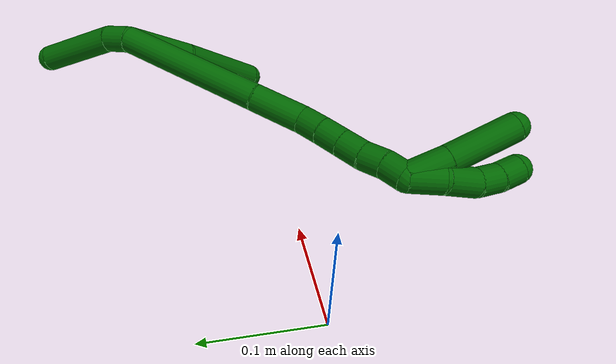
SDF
<sdf version="1.7">
 <world name="default">
  <model name="6">
   <static>0</static>
   <link name="6">
    <collision name="collision-cylinder-e_1_2_8">
     <pose>0.014513 -0.019784 -0.019324 2.34443 0.483277 1.05898</pose>
     <geometry><cylinder><radius>0.0125</radius><length>0.062465</length></cylinder></geometry>
     <surface>
      <friction><ode><mu>1.16</mu><mu2>1.16</mu2><slip1>0</slip1><slip2>0</slip2></ode></friction>
      <contact><ode><kp>1e+06</kp><kd>1</kd><max_vel>0</max_vel><min_depth>0.001</min_depth></ode></contact>
     </surface>
    </collision>
    <visual name="visual-cylinder-e_1_2_8">
     <pose>0.014513 -0.019784 -0.019324 2.34443 0.483277 1.05898</pose>
     <geometry><cylinder><radius>0.0125</radius><length>0.062465</length></cylinder></geometry>
     <material><ambient>0 0.392157 0.003922 1</ambient></material>
    </visual>
    <collision name="collision-cylinder-e_2_8_6">
     <pose>0.056335 -0.066818 -0.059318 2.21973 0.673793 1.22852</pose>
     <geometry><cylinder><radius>0.0125</radius><length>0.087535</length></cylinder></geometry>
     <surface>
      <friction><ode><mu>1.16</mu><mu2>1.16</mu2><slip1>0</slip1><slip2>0</slip2></ode></friction>
      <contact><ode><kp>1e+06</kp><kd>1</kd><max_vel>0</max_vel><min_depth>0.001</min_depth></ode></contact>
     </surface>
    </collision>
    <visual name="visual-cylinder-e_2_8_6">
     <pose>0.056335 -0.066818 -0.059318 2.21973 0.673793 1.22852</pose>
     <geometry><cylinder><radius>0.0125</radius><length>0.087535</length></cylinder></geometry>
     <material><ambient>0 0.392157 0.003922 1</ambient></material>
    </visual>
    <collision name="collision-cylinder-e_1_2_9">
     <pose>0.005476 0.004295 0.010332 -0.39395 0.455102 -0.092356</pose>
     <geometry><cylinder><radius>0.0125</radius><length>0.024915</length></cylinder></geometry>
     <surface>
      <friction><ode><mu>1.16</mu><mu2>1.16</mu2><slip1>0</slip1><slip2>0</slip2></ode></friction>
      <contact><ode><kp>1e+06</kp><kd>1</kd><max_vel>0</max_vel><min_depth>0.001</min_depth></ode></contact>
     </surface>
    </collision>
    <visual name="visual-cylinder-e_1_2_9">
     <pose>0.005476 0.004295 0.010332 -0.39395 0.455102 -0.092356</pose>
     <geometry><cylinder><radius>0.0125</radius><length>0.024915</length></cylinder></geometry>
     <material><ambient>0 0.392157 0.003922 1</ambient></material>
    </visual>
    <collision name="collision-cylinder-e_2_9_5">
     <pose>0.031217 0.029593 0.04428 -0.726923 0.570189 -0.222034</pose>
     <geometry><cylinder><radius>0.0125</radius><length>0.075085</length></cylinder></geometry>
     <surface>
      <friction><ode><mu>1.16</mu><mu2>1.16</mu2><slip1>0</slip1><slip2>0</slip2></ode></friction>
      <contact><ode><kp>1e+06</kp><kd>1</kd><max_vel>0</max_vel><min_depth>0.001</min_depth></ode></contact>
     </surface>
    </collision>
    <visual name="visual-cylinder-e_2_9_5">
     <pose>0.031217 0.029593 0.04428 -0.726923 0.570189 -0.222034</pose>
     <geometry><cylinder><radius>0.0125</radius><length>0.075085</length></cylinder></geometry>
     <material><ambient>0 0.392157 0.003922 1</ambient></material>
    </visual>
    <collision name="collision-cylinder-e_1_2_10">
     <pose>-0.016219 -0.010701 -0.069655 2.98916 -0.226205 -1.95779</pose>
     <geometry><cylinder><radius>0.0125</radius><length>0.144629</length></cylinder></geometry>
     <surface>
      <friction><ode><mu>1.16</mu><mu2>1.16</mu2><slip1>0</slip1><slip2>0</slip2></ode></friction>
      <contact><ode><kp>1e+06</kp><kd>1</kd><max_vel>0</max_vel><min_depth>0.001</min_depth></ode></contact>
     </surface>
    </collision>
    <visual name="visual-cylinder-e_1_2_10">
     <pose>-0.016219 -0.010701 -0.069655 2.98916 -0.226205 -1.95779</pose>
     <geometry><cylinder><radius>0.0125</radius><length>0.144629</length></cylinder></geometry>
     <material><ambient>0 0.392157 0.003922 1</ambient></material>
    </visual>
    <collision name="collision-cylinder-e_2_10_11">
     <pose>-0.035897 -0.026121 -0.162706 2.94253 -0.143955 -1.25073</pose>
     <geometry><cylinder><radius>0.0125</radius><length>0.048231</length></cylinder></geometry>
     <surface>
      <friction><ode><mu>1.16</mu><mu2>1.16</mu2><slip1>0</slip1><slip2>0</slip2></ode></friction>
      <contact><ode><kp>1e+06</kp><kd>1</kd><max_vel>0</max_vel><min_depth>0.001</min_depth></ode></contact>
     </surface>
    </collision>
    <visual name="visual-cylinder-e_2_10_11">
     <pose>-0.035897 -0.026121 -0.162706 2.94253 -0.143955 -1.25073</pose>
     <geometry><cylinder><radius>0.0125</radius><length>0.048231</length></cylinder></geometry>
     <material><ambient>0 0.392157 0.003922 1</ambient></material>
    </visual>
    <collision name="collision-cylinder-e_3_11_12">
     <pose>-0.043696 -0.030402 -0.196602 -3.0998 -0.391501 2.93158</pose>
     <geometry><cylinder><radius>0.0125</radius><length>0.022743</length></cylinder></geometry>
     <surface>
      <friction><ode><mu>1.16</mu><mu2>1.16</mu2><slip1>0</slip1><slip2>0</slip2></ode></friction>
      <contact><ode><kp>1e+06</kp><kd>1</kd><max_vel>0</max_vel><min_depth>0.001</min_depth></ode></contact>
     </surface>
    </collision>
    <visual name="visual-cylinder-e_3_11_12">
     <pose>-0.043696 -0.030402 -0.196602 -3.0998 -0.391501 2.93158</pose>
     <geometry><cylinder><radius>0.0125</radius><length>0.022743</length></cylinder></geometry>
     <material><ambient>0 0.392157 0.003922 1</ambient></material>
    </visual>
    <collision name="collision-cylinder-e_4_12_13">
     <pose>-0.051538 -0.029649 -0.217418 -3.11117 -0.327284 2.95785</pose>
     <geometry><cylinder><radius>0.0125</radius><length>0.021794</length></cylinder></geometry>
     <surface>
      <friction><ode><mu>1.16</mu><mu2>1.16</mu2><slip1>0</slip1><slip2>0</slip2></ode></friction>
      <contact><ode><kp>1e+06</kp><kd>1</kd><max_vel>0</max_vel><min_depth>0.001</min_depth></ode></contact>
     </surface>
    </collision>
    <visual name="visual-cylinder-e_4_12_13">
     <pose>-0.051538 -0.029649 -0.217418 -3.11117 -0.327284 2.95785</pose>
     <geometry><cylinder><radius>0.0125</radius><length>0.021794</length></cylinder></geometry>
     <material><ambient>0 0.392157 0.003922 1</ambient></material>
    </visual>
    <collision name="collision-cylinder-e_5_13_14">
     <pose>-0.058544 -0.029034 -0.238055 -3.11249 -0.327002 2.96565</pose>
     <geometry><cylinder><radius>0.0125</radius><length>0.021809</length></cylinder></geometry>
     <surface>
      <friction><ode><mu>1.16</mu><mu2>1.16</mu2><slip1>0</slip1><slip2>0</slip2></ode></friction>
      <contact><ode><kp>1e+06</kp><kd>1</kd><max_vel>0</max_vel><min_depth>0.001</min_depth></ode></contact>
     </surface>
    </collision>
    <visual name="visual-cylinder-e_5_13_14">
     <pose>-0.058544 -0.029034 -0.238055 -3.11249 -0.327002 2.96565</pose>
     <geometry><cylinder><radius>0.0125</radius><length>0.021809</length></cylinder></geometry>
     <material><ambient>0 0.392157 0.003922 1</ambient></material>
    </visual>
    <collision name="collision-cylinder-e_6_14_15">
     <pose>-0.066259 -0.029661 -0.257701 3.04252 -0.422502 -2.68722</pose>
     <geometry><cylinder><radius>0.0125</radius><length>0.020548</length></cylinder></geometry>
     <surface>
      <friction><ode><mu>1.16</mu><mu2>1.16</mu2><slip1>0</slip1><slip2>0</slip2></ode></friction>
      <contact><ode><kp>1e+06</kp><kd>1</kd><max_vel>0</max_vel><min_depth>0.001</min_depth></ode></contact>
     </surface>
    </collision>
    <visual name="visual-cylinder-e_6_14_15">
     <pose>-0.066259 -0.029661 -0.257701 3.04252 -0.422502 -2.68722</pose>
     <geometry><cylinder><radius>0.0125</radius><length>0.020548</length></cylinder></geometry>
     <material><ambient>0 0.392157 0.003922 1</ambient></material>
    </visual>
    <collision name="collision-cylinder-e_7_15_1">
     <pose>-0.074059 -0.029899 -0.276467 -3.0688 -0.362232 2.74904</pose>
     <geometry><cylinder><radius>0.0125</radius><length>0.020245</length></cylinder></geometry>
     <surface>
      <friction><ode><mu>1.16</mu><mu2>1.16</mu2><slip1>0</slip1><slip2>0</slip2></ode></friction>
      <contact><ode><kp>1e+06</kp><kd>1</kd><max_vel>0</max_vel><min_depth>0.001</min_depth></ode></contact>
     </surface>
    </collision>
    <visual name="visual-cylinder-e_7_15_1">
     <pose>-0.074059 -0.029899 -0.276467 -3.0688 -0.362232 2.74904</pose>
     <geometry><cylinder><radius>0.0125</radius><length>0.020245</length></cylinder></geometry>
     <material><ambient>0 0.392157 0.003922 1</ambient></material>
    </visual>
    <collision name="collision-cylinder-e_1_1_16">
     <pose>-0.07988 -0.045757 -0.293571 2.00454 -0.121901 -0.19046</pose>
     <geometry><cylinder><radius>0.0125</radius><length>0.036742</length></cylinder></geometry>
     <surface>
      <friction><ode><mu>1.16</mu><mu2>1.16</mu2><slip1>0</slip1><slip2>0</slip2></ode></friction>
      <contact><ode><kp>1e+06</kp><kd>1</kd><max_vel>0</max_vel><min_depth>0.001</min_depth></ode></contact>
     </surface>
    </collision>
    <visual name="visual-cylinder-e_1_1_16">
     <pose>-0.07988 -0.045757 -0.293571 2.00454 -0.121901 -0.19046</pose>
     <geometry><cylinder><radius>0.0125</radius><length>0.036742</length></cylinder></geometry>
     <material><ambient>0 0.392157 0.003922 1</ambient></material>
    </visual>
    <collision name="collision-cylinder-e_2_16_4">
     <pose>-0.085965 -0.09142 -0.312972 1.95401 -0.12207 -0.18056</pose>
     <geometry><cylinder><radius>0.0125</radius><length>0.063258</length></cylinder></geometry>
     <surface>
      <friction><ode><mu>1.16</mu><mu2>1.16</mu2><slip1>0</slip1><slip2>0</slip2></ode></friction>
      <contact><ode><kp>1e+06</kp><kd>1</kd><max_vel>0</max_vel><min_depth>0.001</min_depth></ode></contact>
     </surface>
    </collision>
    <visual name="visual-cylinder-e_2_16_4">
     <pose>-0.085965 -0.09142 -0.312972 1.95401 -0.12207 -0.18056</pose>
     <geometry><cylinder><radius>0.0125</radius><length>0.063258</length></cylinder></geometry>
     <material><ambient>0 0.392157 0.003922 1</ambient></material>
    </visual>
    <collision name="collision-cylinder-e_1_1_17">
     <pose>-0.078436 -0.038624 -0.29747 2.45837 -0.052954 -0.148694</pose>
     <geometry><cylinder><radius>0.0125</radius><length>0.029862</length></cylinder></geometry>
     <surface>
      <friction><ode><mu>1.16</mu><mu2>1.16</mu2><slip1>0</slip1><slip2>0</slip2></ode></friction>
      <contact><ode><kp>1e+06</kp><kd>1</kd><max_vel>0</max_vel><min_depth>0.001</min_depth></ode></contact>
     </surface>
    </collision>
    <visual name="visual-cylinder-e_1_1_17">
     <pose>-0.078436 -0.038624 -0.29747 2.45837 -0.052954 -0.148694</pose>
     <geometry><cylinder><radius>0.0125</radius><length>0.029862</length></cylinder></geometry>
     <material><ambient>0 0.392157 0.003922 1</ambient></material>
    </visual>
    <collision name="collision-cylinder-e_2_17_18">
     <pose>-0.075622 -0.058085 -0.319307 2.36724 0.245747 0.58817</pose>
     <geometry><cylinder><radius>0.0125</radius><length>0.029632</length></cylinder></geometry>
     <surface>
      <friction><ode><mu>1.16</mu><mu2>1.16</mu2><slip1>0</slip1><slip2>0</slip2></ode></friction>
      <contact><ode><kp>1e+06</kp><kd>1</kd><max_vel>0</max_vel><min_depth>0.001</min_depth></ode></contact>
     </surface>
    </collision>
    <visual name="visual-cylinder-e_2_17_18">
     <pose>-0.075622 -0.058085 -0.319307 2.36724 0.245747 0.58817</pose>
     <geometry><cylinder><radius>0.0125</radius><length>0.029632</length></cylinder></geometry>
     <material><ambient>0 0.392157 0.003922 1</ambient></material>
    </visual>
    <collision name="collision-cylinder-e_3_18_19">
     <pose>-0.071287 -0.076789 -0.334978 2.12839 0.071496 0.128721</pose>
     <geometry><cylinder><radius>0.0125</radius><length>0.020452</length></cylinder></geometry>
     <surface>
      <friction><ode><mu>1.16</mu><mu2>1.16</mu2><slip1>0</slip1><slip2>0</slip2></ode></friction>
      <contact><ode><kp>1e+06</kp><kd>1</kd><max_vel>0</max_vel><min_depth>0.001</min_depth></ode></contact>
     </surface>
    </collision>
    <visual name="visual-cylinder-e_3_18_19">
     <pose>-0.071287 -0.076789 -0.334978 2.12839 0.071496 0.128721</pose>
     <geometry><cylinder><radius>0.0125</radius><length>0.020452</length></cylinder></geometry>
     <material><ambient>0 0.392157 0.003922 1</ambient></material>
    </visual>
    <collision name="collision-cylinder-e_4_19_3">
     <pose>-0.069998 -0.094707 -0.344173 1.95989 0.055751 0.083087</pose>
     <geometry><cylinder><radius>0.0125</radius><length>0.020054</length></cylinder></geometry>
     <surface>
      <friction><ode><mu>1.16</mu><mu2>1.16</mu2><slip1>0</slip1><slip2>0</slip2></ode></friction>
      <contact><ode><kp>1e+06</kp><kd>1</kd><max_vel>0</max_vel><min_depth>0.001</min_depth></ode></contact>
     </surface>
    </collision>
    <visual name="visual-cylinder-e_4_19_3">
     <pose>-0.069998 -0.094707 -0.344173 1.95989 0.055751 0.083087</pose>
     <geometry><cylinder><radius>0.0125</radius><length>0.020054</length></cylinder></geometry>
     <material><ambient>0 0.392157 0.003922 1</ambient></material>
    </visual>
    <collision name="collision-sphere-3">
     <pose>-0.069439 -0.10397 -0.347971 0 -0 0</pose>
     <geometry><sphere><radius>0.0125</radius></sphere></geometry>
     <surface>
      <friction><ode><mu>1.16</mu><mu2>1.16</mu2><slip1>0</slip1><slip2>0</slip2></ode></friction>
      <contact><ode><kp>1e+06</kp><kd>1</kd><max_vel>0</max_vel><min_depth>0.001</min_depth></ode></contact>
     </surface>
    </collision>
    <visual name="visual-sphere-3">
     <pose>-0.069439 -0.10397 -0.347971 0 -0 0</pose>
     <geometry><sphere><radius>0.0125</radius></sphere></geometry>
     <material><ambient>0 0.392157 0.003922 1</ambient></material>
    </visual>
    <collision name="collision-sphere-19">
     <pose>-0.070557 -0.085444 -0.340375 0 -0 0</pose>
     <geometry><sphere><radius>0.0125</radius></sphere></geometry>
     <surface>
      <friction><ode><mu>1.16</mu><mu2>1.16</mu2><slip1>0</slip1><slip2>0</slip2></ode></friction>
      <contact><ode><kp>1e+06</kp><kd>1</kd><max_vel>0</max_vel><min_depth>0.001</min_depth></ode></contact>
     </surface>
    </collision>
    <visual name="visual-sphere-19">
     <pose>-0.070557 -0.085444 -0.340375 0 -0 0</pose>
     <geometry><sphere><radius>0.0125</radius></sphere></geometry>
     <material><ambient>0 0.392157 0.003922 1</ambient></material>
    </visual>
    <collision name="collision-sphere-10">
     <pose>-0.032438 -0.021402 -0.139311 0 -0 0</pose>
     <geometry><sphere><radius>0.0125</radius></sphere></geometry>
     <surface>
      <friction><ode><mu>1.16</mu><mu2>1.16</mu2><slip1>0</slip1><slip2>0</slip2></ode></friction>
      <contact><ode><kp>1e+06</kp><kd>1</kd><max_vel>0</max_vel><min_depth>0.001</min_depth></ode></contact>
     </surface>
    </collision>
    <visual name="visual-sphere-10">
     <pose>-0.032438 -0.021402 -0.139311 0 -0 0</pose>
     <geometry><sphere><radius>0.0125</radius></sphere></geometry>
     <material><ambient>0 0.392157 0.003922 1</ambient></material>
    </visual>
    <collision name="collision-sphere-5">
     <pose>0.051482 0.050595 0.067894 0 -0 0</pose>
     <geometry><sphere><radius>0.0125</radius></sphere></geometry>
     <surface>
      <friction><ode><mu>1.16</mu><mu2>1.16</mu2><slip1>0</slip1><slip2>0</slip2></ode></friction>
      <contact><ode><kp>1e+06</kp><kd>1</kd><max_vel>0</max_vel><min_depth>0.001</min_depth></ode></contact>
     </surface>
    </collision>
    <visual name="visual-sphere-5">
     <pose>0.051482 0.050595 0.067894 0 -0 0</pose>
     <geometry><sphere><radius>0.0125</radius></sphere></geometry>
     <material><ambient>0 0.392157 0.003922 1</ambient></material>
    </visual>
    <collision name="collision-sphere-6">
     <pose>0.083644 -0.094069 -0.079988 0 -0 0</pose>
     <geometry><sphere><radius>0.0125</radius></sphere></geometry>
     <surface>
      <friction><ode><mu>1.16</mu><mu2>1.16</mu2><slip1>0</slip1><slip2>0</slip2></ode></friction>
      <contact><ode><kp>1e+06</kp><kd>1</kd><max_vel>0</max_vel><min_depth>0.001</min_depth></ode></contact>
     </surface>
    </collision>
    <visual name="visual-sphere-6">
     <pose>0.083644 -0.094069 -0.079988 0 -0 0</pose>
     <geometry><sphere><radius>0.0125</radius></sphere></geometry>
     <material><ambient>0 0.392157 0.003922 1</ambient></material>
    </visual>
    <collision name="collision-sphere-9">
     <pose>0.010952 0.00859 0.020665 0 -0 0</pose>
     <geometry><sphere><radius>0.0125</radius></sphere></geometry>
     <surface>
      <friction><ode><mu>1.16</mu><mu2>1.16</mu2><slip1>0</slip1><slip2>0</slip2></ode></friction>
      <contact><ode><kp>1e+06</kp><kd>1</kd><max_vel>0</max_vel><min_depth>0.001</min_depth></ode></contact>
     </surface>
    </collision>
    <visual name="visual-sphere-9">
     <pose>0.010952 0.00859 0.020665 0 -0 0</pose>
     <geometry><sphere><radius>0.0125</radius></sphere></geometry>
     <material><ambient>0 0.392157 0.003922 1</ambient></material>
    </visual>
    <collision name="collision-sphere-2">
     <geometry><sphere><radius>0.0125</radius></sphere></geometry>
     <surface>
      <friction><ode><mu>1.16</mu><mu2>1.16</mu2><slip1>0</slip1><slip2>0</slip2></ode></friction>
      <contact><ode><kp>1e+06</kp><kd>1</kd><max_vel>0</max_vel><min_depth>0.001</min_depth></ode></contact>
     </surface>
    </collision>
    <visual name="visual-sphere-2">
     <geometry><sphere><radius>0.0125</radius></sphere></geometry>
     <material><ambient>0 0.392157 0.003922 1</ambient></material>
    </visual>
    <collision name="collision-sphere-8">
     <pose>0.029026 -0.039568 -0.038648 0 -0 0</pose>
     <geometry><sphere><radius>0.0125</radius></sphere></geometry>
     <surface>
      <friction><ode><mu>1.16</mu><mu2>1.16</mu2><slip1>0</slip1><slip2>0</slip2></ode></friction>
      <contact><ode><kp>1e+06</kp><kd>1</kd><max_vel>0</max_vel><min_depth>0.001</min_depth></ode></contact>
     </surface>
    </collision>
    <visual name="visual-sphere-8">
     <pose>0.029026 -0.039568 -0.038648 0 -0 0</pose>
     <geometry><sphere><radius>0.0125</radius></sphere></geometry>
     <material><ambient>0 0.392157 0.003922 1</ambient></material>
    </visual>
    <collision name="collision-sphere-11">
     <pose>-0.039357 -0.030841 -0.186101 0 -0 0</pose>
     <geometry><sphere><radius>0.0125</radius></sphere></geometry>
     <surface>
      <friction><ode><mu>1.16</mu><mu2>1.16</mu2><slip1>0</slip1><slip2>0</slip2></ode></friction>
      <contact><ode><kp>1e+06</kp><kd>1</kd><max_vel>0</max_vel><min_depth>0.001</min_depth></ode></contact>
     </surface>
    </collision>
    <visual name="visual-sphere-11">
     <pose>-0.039357 -0.030841 -0.186101 0 -0 0</pose>
     <geometry><sphere><radius>0.0125</radius></sphere></geometry>
     <material><ambient>0 0.392157 0.003922 1</ambient></material>
    </visual>
    <collision name="collision-sphere-12">
     <pose>-0.048035 -0.029963 -0.207104 0 -0 0</pose>
     <geometry><sphere><radius>0.0125</radius></sphere></geometry>
     <surface>
      <friction><ode><mu>1.16</mu><mu2>1.16</mu2><slip1>0</slip1><slip2>0</slip2></ode></friction>
      <contact><ode><kp>1e+06</kp><kd>1</kd><max_vel>0</max_vel><min_depth>0.001</min_depth></ode></contact>
     </surface>
    </collision>
    <visual name="visual-sphere-12">
     <pose>-0.048035 -0.029963 -0.207104 0 -0 0</pose>
     <geometry><sphere><radius>0.0125</radius></sphere></geometry>
     <material><ambient>0 0.392157 0.003922 1</ambient></material>
    </visual>
    <collision name="collision-sphere-13">
     <pose>-0.055041 -0.029335 -0.227732 0 -0 0</pose>
     <geometry><sphere><radius>0.0125</radius></sphere></geometry>
     <surface>
      <friction><ode><mu>1.16</mu><mu2>1.16</mu2><slip1>0</slip1><slip2>0</slip2></ode></friction>
      <contact><ode><kp>1e+06</kp><kd>1</kd><max_vel>0</max_vel><min_depth>0.001</min_depth></ode></contact>
     </surface>
    </collision>
    <visual name="visual-sphere-13">
     <pose>-0.055041 -0.029335 -0.227732 0 -0 0</pose>
     <geometry><sphere><radius>0.0125</radius></sphere></geometry>
     <material><ambient>0 0.392157 0.003922 1</ambient></material>
    </visual>
    <collision name="collision-sphere-14">
     <pose>-0.062046 -0.028734 -0.248377 0 -0 0</pose>
     <geometry><sphere><radius>0.0125</radius></sphere></geometry>
     <surface>
      <friction><ode><mu>1.16</mu><mu2>1.16</mu2><slip1>0</slip1><slip2>0</slip2></ode></friction>
      <contact><ode><kp>1e+06</kp><kd>1</kd><max_vel>0</max_vel><min_depth>0.001</min_depth></ode></contact>
     </surface>
    </collision>
    <visual name="visual-sphere-14">
     <pose>-0.062046 -0.028734 -0.248377 0 -0 0</pose>
     <geometry><sphere><radius>0.0125</radius></sphere></geometry>
     <material><ambient>0 0.392157 0.003922 1</ambient></material>
    </visual>
    <collision name="collision-sphere-15">
     <pose>-0.070472 -0.030588 -0.267026 0 -0 0</pose>
     <geometry><sphere><radius>0.0125</radius></sphere></geometry>
     <surface>
      <friction><ode><mu>1.16</mu><mu2>1.16</mu2><slip1>0</slip1><slip2>0</slip2></ode></friction>
      <contact><ode><kp>1e+06</kp><kd>1</kd><max_vel>0</max_vel><min_depth>0.001</min_depth></ode></contact>
     </surface>
    </collision>
    <visual name="visual-sphere-15">
     <pose>-0.070472 -0.030588 -0.267026 0 -0 0</pose>
     <geometry><sphere><radius>0.0125</radius></sphere></geometry>
     <material><ambient>0 0.392157 0.003922 1</ambient></material>
    </visual>
    <collision name="collision-sphere-1">
     <pose>-0.077646 -0.029211 -0.285907 0 -0 0</pose>
     <geometry><sphere><radius>0.0125</radius></sphere></geometry>
     <surface>
      <friction><ode><mu>1.16</mu><mu2>1.16</mu2><slip1>0</slip1><slip2>0</slip2></ode></friction>
      <contact><ode><kp>1e+06</kp><kd>1</kd><max_vel>0</max_vel><min_depth>0.001</min_depth></ode></contact>
     </surface>
    </collision>
    <visual name="visual-sphere-1">
     <pose>-0.077646 -0.029211 -0.285907 0 -0 0</pose>
     <geometry><sphere><radius>0.0125</radius></sphere></geometry>
     <material><ambient>0 0.392157 0.003922 1</ambient></material>
    </visual>
    <collision name="collision-sphere-18">
     <pose>-0.072018 -0.068134 -0.32958 0 -0 0</pose>
     <geometry><sphere><radius>0.0125</radius></sphere></geometry>
     <surface>
      <friction><ode><mu>1.16</mu><mu2>1.16</mu2><slip1>0</slip1><slip2>0</slip2></ode></friction>
      <contact><ode><kp>1e+06</kp><kd>1</kd><max_vel>0</max_vel><min_depth>0.001</min_depth></ode></contact>
     </surface>
    </collision>
    <visual name="visual-sphere-18">
     <pose>-0.072018 -0.068134 -0.32958 0 -0 0</pose>
     <geometry><sphere><radius>0.0125</radius></sphere></geometry>
     <material><ambient>0 0.392157 0.003922 1</ambient></material>
    </visual>
    <collision name="collision-sphere-16">
     <pose>-0.082114 -0.062303 -0.301234 0 -0 0</pose>
     <geometry><sphere><radius>0.0125</radius></sphere></geometry>
     <surface>
      <friction><ode><mu>1.16</mu><mu2>1.16</mu2><slip1>0</slip1><slip2>0</slip2></ode></friction>
      <contact><ode><kp>1e+06</kp><kd>1</kd><max_vel>0</max_vel><min_depth>0.001</min_depth></ode></contact>
     </surface>
    </collision>
    <visual name="visual-sphere-16">
     <pose>-0.082114 -0.062303 -0.301234 0 -0 0</pose>
     <geometry><sphere><radius>0.0125</radius></sphere></geometry>
     <material><ambient>0 0.392157 0.003922 1</ambient></material>
    </visual>
    <collision name="collision-sphere-4">
     <pose>-0.089817 -0.120536 -0.32471 0 -0 0</pose>
     <geometry><sphere><radius>0.0125</radius></sphere></geometry>
     <surface>
      <friction><ode><mu>1.16</mu><mu2>1.16</mu2><slip1>0</slip1><slip2>0</slip2></ode></friction>
      <contact><ode><kp>1e+06</kp><kd>1</kd><max_vel>0</max_vel><min_depth>0.001</min_depth></ode></contact>
     </surface>
    </collision>
    <visual name="visual-sphere-4">
     <pose>-0.089817 -0.120536 -0.32471 0 -0 0</pose>
     <geometry><sphere><radius>0.0125</radius></sphere></geometry>
     <material><ambient>0 0.392157 0.003922 1</ambient></material>
    </visual>
    <collision name="collision-sphere-17">
     <pose>-0.079227 -0.048036 -0.309034 0 -0 0</pose>
     <geometry><sphere><radius>0.0125</radius></sphere></geometry>
     <surface>
      <friction><ode><mu>1.16</mu><mu2>1.16</mu2><slip1>0</slip1><slip2>0</slip2></ode></friction>
      <contact><ode><kp>1e+06</kp><kd>1</kd><max_vel>0</max_vel><min_depth>0.001</min_depth></ode></contact>
     </surface>
    </collision>
    <visual name="visual-sphere-17">
     <pose>-0.079227 -0.048036 -0.309034 0 -0 0</pose>
     <geometry><sphere><radius>0.0125</radius></sphere></geometry>
     <material><ambient>0 0.392157 0.003922 1</ambient></material>
    </visual>
    <inertial>
     <pose>-0.023775 -0.032743 -0.144953 0 -0 0</pose>
     <mass>0.75</mass>
     <inertia><ixx>-0.00019</ixx><ixy>0</ixy><ixz>0</ixz><iyy>-7e-05</iyy><iyz>0</iyz><izz>6.8e-05</izz></inertia>
    </inertial>
   </link>
   <pose>0.287939 0.128995 0.09138 -0.641931 1.12747 0.053811</pose>
  </model>
 </world>
</sdf>
